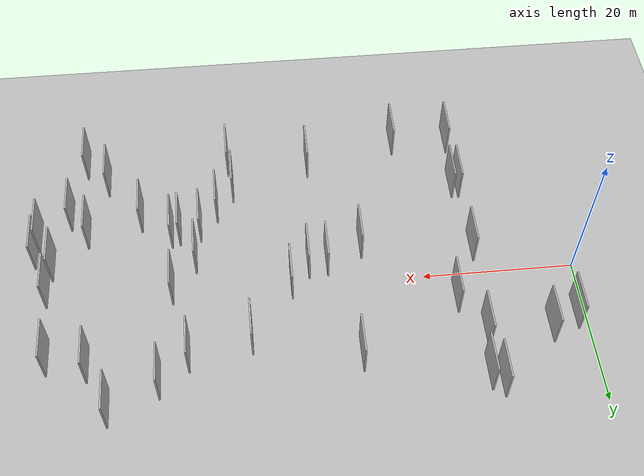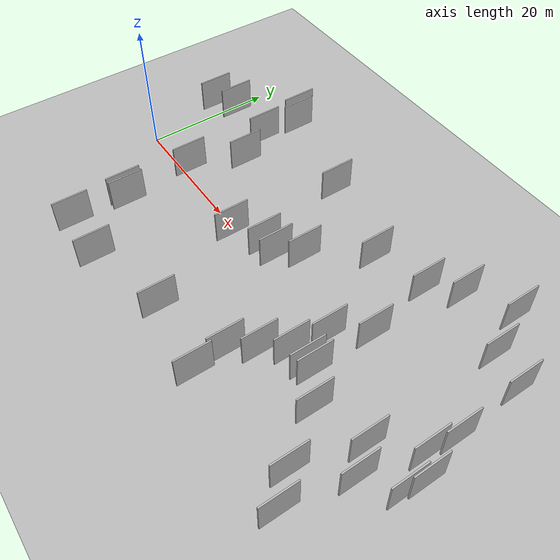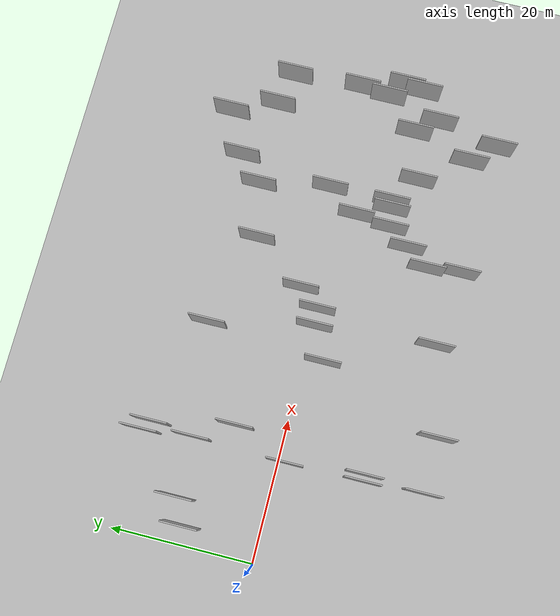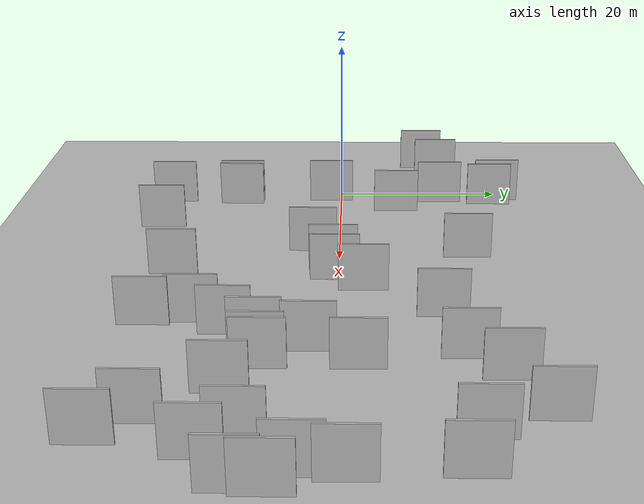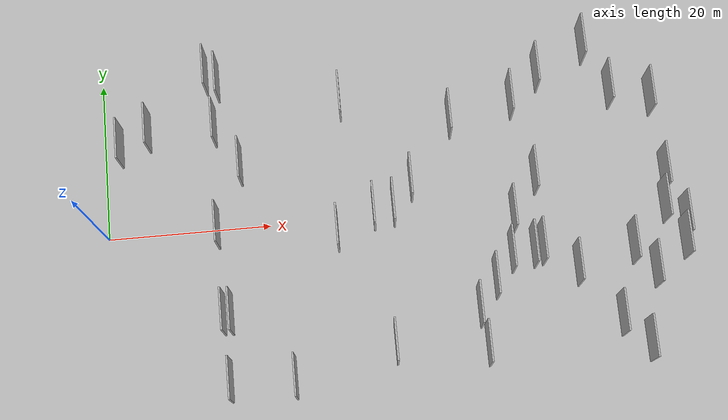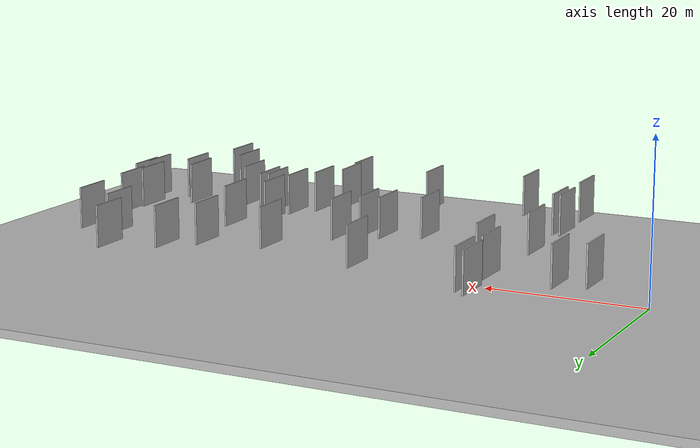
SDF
<?xml version="1.0" encoding="utf-8"?>

<sdf version="1.6">

   <world name="default">

      <gui fullscreen="0">

         <camera name="user_camera">

            <pose>-15 0 4.57585 0 0 0</pose>

            <view_controller>orbit</view_controller>

         </camera>

      </gui>

      <scene>

         <sky>

           <clouds>

             <speed>12</speed>

           </clouds>

         </sky>

         <ambient>0.4 0.4 0.4 1</ambient>

         <background>0.7 0.7 0.7 1</background>

         <shadows>1</shadows>

      </scene>

      <gravity>0 0 -9.8066</gravity>

      <magnetic_field>6e-06 2.3e-05 -4.2e-05</magnetic_field>

      <physics default="0" name="default_physics" type="ode">

         <ode>

            <solver>

               <type>quick</type>

               <iters>10</iters>

               <sor>1.0</sor>

               <use_dynamic_moi_rescaling>0</use_dynamic_moi_rescaling>

            </solver>

            <constraints>

               <cfm>0</cfm>

               <erp>0.2</erp>

               <contact_max_correcting_vel>100</contact_max_correcting_vel>

               <contact_surface_layer>0.001</contact_surface_layer>

            </constraints>

         </ode>

         <max_step_size>0.004</max_step_size>

         <real_time_factor>1</real_time_factor>

         <real_time_update_rate>250</real_time_update_rate>

      </physics>

      <light name="sun" type="directional">

         <cast_shadows>1</cast_shadows>

         <pose>0 0 10 0 0 0</pose>

         <diffuse>0.8 0.8 0.8 1</diffuse>

         <specular>0.2 0.2 0.2 1</specular>

         <attenuation>

            <range>1000</range>

            <constant>0.9</constant>

            <linear>0.01</linear>

            <quadratic>0.001</quadratic>

         </attenuation>

         <direction>-0.5 0.1 -0.9</direction>

      </light>

      <include>

         <name>ground_plane_1</name>

         <uri>model://HANNAS_ground_plane</uri>

         <pose>0 0 0  0 0 0</pose>

      </include>

      <include>

         <name>ground_plane_2</name>

         <uri>model://HANNAS_ground_plane</uri>

         <pose>100 0 0  0 0 0</pose>

      </include>

      <model name="HANNAS_wall_1">

         <static>1</static>

         <pose frame="">15.1511 -11.4985 5.0 0.000000 0.000000 1.570796</pose>

         <link name="link">

            <pose frame="">0 0 2.50 0 0 0</pose>

            <collision name="collision">

               <geometry>

                  <box>

                     <size>5.00 0.2 5.00</size>

                  </box>

               </geometry>

               <max_contacts>10</max_contacts>

               <surface>

                  <contact>

                     <ode/>

                  </contact>

                  <bounce/>

                  <friction>

                     <torsional>

                        <ode/>

                     </torsional>

                     <ode/>

                  </friction>

               </surface>

            </collision>

            <visual name="visual">

               <cast_shadows>0</cast_shadows>

               <geometry>

                  <box>

                     <size>5.00 0.2 5.00</size>

                  </box>

               </geometry>

               <material>

                  <script>

                     <uri>model://HANNAS_wall/materials/scripts</uri>

                     <uri>model://HANNAS_wall/materials/textures</uri>

                     <name>vrc/HANNAS_wall</name>

                  </script>

               </material>

            </visual>

            <self_collide>0</self_collide>

            <enable_wind>0</enable_wind>

            <kinematic>0</kinematic>

         </link>

      </model>

      <model name="HANNAS_wall_2">

         <static>1</static>

         <pose frame="">67.4812 -2.6489 5.0 0.000000 0.000000 1.570796</pose>

         <link name="link">

            <pose frame="">0 0 2.50 0 0 0</pose>

            <collision name="collision">

               <geometry>

                  <box>

                     <size>5.00 0.2 5.00</size>

                  </box>

               </geometry>

               <max_contacts>10</max_contacts>

               <surface>

                  <contact>

                     <ode/>

                  </contact>

                  <bounce/>

                  <friction>

                     <torsional>

                        <ode/>

                     </torsional>

                     <ode/>

                  </friction>

               </surface>

            </collision>

            <visual name="visual">

               <cast_shadows>0</cast_shadows>

               <geometry>

                  <box>

                     <size>5.00 0.2 5.00</size>

                  </box>

               </geometry>

               <material>

                  <script>

                     <uri>model://HANNAS_wall/materials/scripts</uri>

                     <uri>model://HANNAS_wall/materials/textures</uri>

                     <name>vrc/HANNAS_wall</name>

                  </script>

               </material>

            </visual>

            <self_collide>0</self_collide>

            <enable_wind>0</enable_wind>

            <kinematic>0</kinematic>

         </link>

      </model>

      <model name="HANNAS_wall_3">

         <static>1</static>

         <pose frame="">42.9024 10.1819 5.0 0.000000 0.000000 1.570796</pose>

         <link name="link">

            <pose frame="">0 0 2.50 0 0 0</pose>

            <collision name="collision">

               <geometry>

                  <box>

                     <size>5.00 0.2 5.00</size>

                  </box>

               </geometry>

               <max_contacts>10</max_contacts>

               <surface>

                  <contact>

                     <ode/>

                  </contact>

                  <bounce/>

                  <friction>

                     <torsional>

                        <ode/>

                     </torsional>

                     <ode/>

                  </friction>

               </surface>

            </collision>

            <visual name="visual">

               <cast_shadows>0</cast_shadows>

               <geometry>

                  <box>

                     <size>5.00 0.2 5.00</size>

                  </box>

               </geometry>

               <material>

                  <script>

                     <uri>model://HANNAS_wall/materials/scripts</uri>

                     <uri>model://HANNAS_wall/materials/textures</uri>

                     <name>vrc/HANNAS_wall</name>

                  </script>

               </material>

            </visual>

            <self_collide>0</self_collide>

            <enable_wind>0</enable_wind>

            <kinematic>0</kinematic>

         </link>

      </model>

      <model name="HANNAS_wall_4">

         <static>1</static>

         <pose frame="">49.3841 -2.2430 5.0 0.000000 0.000000 1.570796</pose>

         <link name="link">

            <pose frame="">0 0 2.50 0 0 0</pose>

            <collision name="collision">

               <geometry>

                  <box>

                     <size>5.00 0.2 5.00</size>

                  </box>

               </geometry>

               <max_contacts>10</max_contacts>

               <surface>

                  <contact>

                     <ode/>

                  </contact>

                  <bounce/>

                  <friction>

                     <torsional>

                        <ode/>

                     </torsional>

                     <ode/>

                  </friction>

               </surface>

            </collision>

            <visual name="visual">

               <cast_shadows>0</cast_shadows>

               <geometry>

                  <box>

                     <size>5.00 0.2 5.00</size>

                  </box>

               </geometry>

               <material>

                  <script>

                     <uri>model://HANNAS_wall/materials/scripts</uri>

                     <uri>model://HANNAS_wall/materials/textures</uri>

                     <name>vrc/HANNAS_wall</name>

                  </script>

               </material>

            </visual>

            <self_collide>0</self_collide>

            <enable_wind>0</enable_wind>

            <kinematic>0</kinematic>

         </link>

      </model>

      <model name="HANNAS_wall_5">

         <static>1</static>

         <pose frame="">44.2553 -13.3120 5.0 0.000000 0.000000 1.570796</pose>

         <link name="link">

            <pose frame="">0 0 2.50 0 0 0</pose>

            <collision name="collision">

               <geometry>

                  <box>

                     <size>5.00 0.2 5.00</size>

                  </box>

               </geometry>

               <max_contacts>10</max_contacts>

               <surface>

                  <contact>

                     <ode/>

                  </contact>

                  <bounce/>

                  <friction>

                     <torsional>

                        <ode/>

                     </torsional>

                     <ode/>

                  </friction>

               </surface>

            </collision>

            <visual name="visual">

               <cast_shadows>0</cast_shadows>

               <geometry>

                  <box>

                     <size>5.00 0.2 5.00</size>

                  </box>

               </geometry>

               <material>

                  <script>

                     <uri>model://HANNAS_wall/materials/scripts</uri>

                     <uri>model://HANNAS_wall/materials/textures</uri>

                     <name>vrc/HANNAS_wall</name>

                  </script>

               </material>

            </visual>

            <self_collide>0</self_collide>

            <enable_wind>0</enable_wind>

            <kinematic>0</kinematic>

         </link>

      </model>

      <model name="HANNAS_wall_6">

         <static>1</static>

         <pose frame="">46.4679 -10.0862 5.0 0.000000 0.000000 1.570796</pose>

         <link name="link">

            <pose frame="">0 0 2.50 0 0 0</pose>

            <collision name="collision">

               <geometry>

                  <box>

                     <size>5.00 0.2 5.00</size>

                  </box>

               </geometry>

               <max_contacts>10</max_contacts>

               <surface>

                  <contact>

                     <ode/>

                  </contact>

                  <bounce/>

                  <friction>

                     <torsional>

                        <ode/>

                     </torsional>

                     <ode/>

                  </friction>

               </surface>

            </collision>

            <visual name="visual">

               <cast_shadows>0</cast_shadows>

               <geometry>

                  <box>

                     <size>5.00 0.2 5.00</size>

                  </box>

               </geometry>

               <material>

                  <script>

                     <uri>model://HANNAS_wall/materials/scripts</uri>

                     <uri>model://HANNAS_wall/materials/textures</uri>

                     <name>vrc/HANNAS_wall</name>

                  </script>

               </material>

            </visual>

            <self_collide>0</self_collide>

            <enable_wind>0</enable_wind>

            <kinematic>0</kinematic>

         </link>

      </model>

      <model name="HANNAS_wall_7">

         <static>1</static>

         <pose frame="">37.5497 2.6531 5.0 0.000000 0.000000 1.570796</pose>

         <link name="link">

            <pose frame="">0 0 2.50 0 0 0</pose>

            <collision name="collision">

               <geometry>

                  <box>

                     <size>5.00 0.2 5.00</size>

                  </box>

               </geometry>

               <max_contacts>10</max_contacts>

               <surface>

                  <contact>

                     <ode/>

                  </contact>

                  <bounce/>

                  <friction>

                     <torsional>

                        <ode/>

                     </torsional>

                     <ode/>

                  </friction>

               </surface>

            </collision>

            <visual name="visual">

               <cast_shadows>0</cast_shadows>

               <geometry>

                  <box>

                     <size>5.00 0.2 5.00</size>

                  </box>

               </geometry>

               <material>

                  <script>

                     <uri>model://HANNAS_wall/materials/scripts</uri>

                     <uri>model://HANNAS_wall/materials/textures</uri>

                     <name>vrc/HANNAS_wall</name>

                  </script>

               </material>

            </visual>

            <self_collide>0</self_collide>

            <enable_wind>0</enable_wind>

            <kinematic>0</kinematic>

         </link>

      </model>

      <model name="HANNAS_wall_8">

         <static>1</static>

         <pose frame="">51.3502 -6.7506 5.0 0.000000 0.000000 1.570796</pose>

         <link name="link">

            <pose frame="">0 0 2.50 0 0 0</pose>

            <collision name="collision">

               <geometry>

                  <box>

                     <size>5.00 0.2 5.00</size>

                  </box>

               </geometry>

               <max_contacts>10</max_contacts>

               <surface>

                  <contact>

                     <ode/>

                  </contact>

                  <bounce/>

                  <friction>

                     <torsional>

                        <ode/>

                     </torsional>

                     <ode/>

                  </friction>

               </surface>

            </collision>

            <visual name="visual">

               <cast_shadows>0</cast_shadows>

               <geometry>

                  <box>

                     <size>5.00 0.2 5.00</size>

                  </box>

               </geometry>

               <material>

                  <script>

                     <uri>model://HANNAS_wall/materials/scripts</uri>

                     <uri>model://HANNAS_wall/materials/textures</uri>

                     <name>vrc/HANNAS_wall</name>

                  </script>

               </material>

            </visual>

            <self_collide>0</self_collide>

            <enable_wind>0</enable_wind>

            <kinematic>0</kinematic>

         </link>

      </model>

      <model name="HANNAS_wall_9">

         <static>1</static>

         <pose frame="">69.3696 -7.2578 5.0 0.000000 0.000000 1.570796</pose>

         <link name="link">

            <pose frame="">0 0 2.50 0 0 0</pose>

            <collision name="collision">

               <geometry>

                  <box>

                     <size>5.00 0.2 5.00</size>

                  </box>

               </geometry>

               <max_contacts>10</max_contacts>

               <surface>

                  <contact>

                     <ode/>

                  </contact>

                  <bounce/>

                  <friction>

                     <torsional>

                        <ode/>

                     </torsional>

                     <ode/>

                  </friction>

               </surface>

            </collision>

            <visual name="visual">

               <cast_shadows>0</cast_shadows>

               <geometry>

                  <box>

                     <size>5.00 0.2 5.00</size>

                  </box>

               </geometry>

               <material>

                  <script>

                     <uri>model://HANNAS_wall/materials/scripts</uri>

                     <uri>model://HANNAS_wall/materials/textures</uri>

                     <name>vrc/HANNAS_wall</name>

                  </script>

               </material>

            </visual>

            <self_collide>0</self_collide>

            <enable_wind>0</enable_wind>

            <kinematic>0</kinematic>

         </link>

      </model>

      <model name="HANNAS_wall_10">

         <static>1</static>

         <pose frame="">14.4897 11.6780 5.0 0.000000 0.000000 1.570796</pose>

         <link name="link">

            <pose frame="">0 0 2.50 0 0 0</pose>

            <collision name="collision">

               <geometry>

                  <box>

                     <size>5.00 0.2 5.00</size>

                  </box>

               </geometry>

               <max_contacts>10</max_contacts>

               <surface>

                  <contact>

                     <ode/>

                  </contact>

                  <bounce/>

                  <friction>

                     <torsional>

                        <ode/>

                     </torsional>

                     <ode/>

                  </friction>

               </surface>

            </collision>

            <visual name="visual">

               <cast_shadows>0</cast_shadows>

               <geometry>

                  <box>

                     <size>5.00 0.2 5.00</size>

                  </box>

               </geometry>

               <material>

                  <script>

                     <uri>model://HANNAS_wall/materials/scripts</uri>

                     <uri>model://HANNAS_wall/materials/textures</uri>

                     <name>vrc/HANNAS_wall</name>

                  </script>

               </material>

            </visual>

            <self_collide>0</self_collide>

            <enable_wind>0</enable_wind>

            <kinematic>0</kinematic>

         </link>

      </model>

      <model name="HANNAS_wall_11">

         <static>1</static>

         <pose frame="">6.4810 11.6761 5.0 0.000000 0.000000 1.570796</pose>

         <link name="link">

            <pose frame="">0 0 2.50 0 0 0</pose>

            <collision name="collision">

               <geometry>

                  <box>

                     <size>5.00 0.2 5.00</size>

                  </box>

               </geometry>

               <max_contacts>10</max_contacts>

               <surface>

                  <contact>

                     <ode/>

                  </contact>

                  <bounce/>

                  <friction>

                     <torsional>

                        <ode/>

                     </torsional>

                     <ode/>

                  </friction>

               </surface>

            </collision>

            <visual name="visual">

               <cast_shadows>0</cast_shadows>

               <geometry>

                  <box>

                     <size>5.00 0.2 5.00</size>

                  </box>

               </geometry>

               <material>

                  <script>

                     <uri>model://HANNAS_wall/materials/scripts</uri>

                     <uri>model://HANNAS_wall/materials/textures</uri>

                     <name>vrc/HANNAS_wall</name>

                  </script>

               </material>

            </visual>

            <self_collide>0</self_collide>

            <enable_wind>0</enable_wind>

            <kinematic>0</kinematic>

         </link>

      </model>

      <model name="HANNAS_wall_12">

         <static>1</static>

         <pose frame="">60.7297 -15.7429 5.0 0.000000 0.000000 1.570796</pose>

         <link name="link">

            <pose frame="">0 0 2.50 0 0 0</pose>

            <collision name="collision">

               <geometry>

                  <box>

                     <size>5.00 0.2 5.00</size>

                  </box>

               </geometry>

               <max_contacts>10</max_contacts>

               <surface>

                  <contact>

                     <ode/>

                  </contact>

                  <bounce/>

                  <friction>

                     <torsional>

                        <ode/>

                     </torsional>

                     <ode/>

                  </friction>

               </surface>

            </collision>

            <visual name="visual">

               <cast_shadows>0</cast_shadows>

               <geometry>

                  <box>

                     <size>5.00 0.2 5.00</size>

                  </box>

               </geometry>

               <material>

                  <script>

                     <uri>model://HANNAS_wall/materials/scripts</uri>

                     <uri>model://HANNAS_wall/materials/textures</uri>

                     <name>vrc/HANNAS_wall</name>

                  </script>

               </material>

            </visual>

            <self_collide>0</self_collide>

            <enable_wind>0</enable_wind>

            <kinematic>0</kinematic>

         </link>

      </model>

      <model name="HANNAS_wall_13">

         <static>1</static>

         <pose frame="">14.6492 -19.4066 5.0 0.000000 0.000000 1.570796</pose>

         <link name="link">

            <pose frame="">0 0 2.50 0 0 0</pose>

            <collision name="collision">

               <geometry>

                  <box>

                     <size>5.00 0.2 5.00</size>

                  </box>

               </geometry>

               <max_contacts>10</max_contacts>

               <surface>

                  <contact>

                     <ode/>

                  </contact>

                  <bounce/>

                  <friction>

                     <torsional>

                        <ode/>

                     </torsional>

                     <ode/>

                  </friction>

               </surface>

            </collision>

            <visual name="visual">

               <cast_shadows>0</cast_shadows>

               <geometry>

                  <box>

                     <size>5.00 0.2 5.00</size>

                  </box>

               </geometry>

               <material>

                  <script>

                     <uri>model://HANNAS_wall/materials/scripts</uri>

                     <uri>model://HANNAS_wall/materials/textures</uri>

                     <name>vrc/HANNAS_wall</name>

                  </script>

               </material>

            </visual>

            <self_collide>0</self_collide>

            <enable_wind>0</enable_wind>

            <kinematic>0</kinematic>

         </link>

      </model>

      <model name="HANNAS_wall_14">

         <static>1</static>

         <pose frame="">22.1381 -19.7053 5.0 0.000000 0.000000 1.570796</pose>

         <link name="link">

            <pose frame="">0 0 2.50 0 0 0</pose>

            <collision name="collision">

               <geometry>

                  <box>

                     <size>5.00 0.2 5.00</size>

                  </box>

               </geometry>

               <max_contacts>10</max_contacts>

               <surface>

                  <contact>

                     <ode/>

                  </contact>

                  <bounce/>

                  <friction>

                     <torsional>

                        <ode/>

                     </torsional>

                     <ode/>

                  </friction>

               </surface>

            </collision>

            <visual name="visual">

               <cast_shadows>0</cast_shadows>

               <geometry>

                  <box>

                     <size>5.00 0.2 5.00</size>

                  </box>

               </geometry>

               <material>

                  <script>

                     <uri>model://HANNAS_wall/materials/scripts</uri>

                     <uri>model://HANNAS_wall/materials/textures</uri>

                     <name>vrc/HANNAS_wall</name>

                  </script>

               </material>

            </visual>

            <self_collide>0</self_collide>

            <enable_wind>0</enable_wind>

            <kinematic>0</kinematic>

         </link>

      </model>

      <model name="HANNAS_wall_15">

         <static>1</static>

         <pose frame="">54.0547 15.1970 5.0 0.000000 0.000000 1.570796</pose>

         <link name="link">

            <pose frame="">0 0 2.50 0 0 0</pose>

            <collision name="collision">

               <geometry>

                  <box>

                     <size>5.00 0.2 5.00</size>

                  </box>

               </geometry>

               <max_contacts>10</max_contacts>

               <surface>

                  <contact>

                     <ode/>

                  </contact>

                  <bounce/>

                  <friction>

                     <torsional>

                        <ode/>

                     </torsional>

                     <ode/>

                  </friction>

               </surface>

            </collision>

            <visual name="visual">

               <cast_shadows>0</cast_shadows>

               <geometry>

                  <box>

                     <size>5.00 0.2 5.00</size>

                  </box>

               </geometry>

               <material>

                  <script>

                     <uri>model://HANNAS_wall/materials/scripts</uri>

                     <uri>model://HANNAS_wall/materials/textures</uri>

                     <name>vrc/HANNAS_wall</name>

                  </script>

               </material>

            </visual>

            <self_collide>0</self_collide>

            <enable_wind>0</enable_wind>

            <kinematic>0</kinematic>

         </link>

      </model>

      <model name="HANNAS_wall_16">

         <static>1</static>

         <pose frame="">56.2926 -9.3740 5.0 0.000000 0.000000 1.570796</pose>

         <link name="link">

            <pose frame="">0 0 2.50 0 0 0</pose>

            <collision name="collision">

               <geometry>

                  <box>

                     <size>5.00 0.2 5.00</size>

                  </box>

               </geometry>

               <max_contacts>10</max_contacts>

               <surface>

                  <contact>

                     <ode/>

                  </contact>

                  <bounce/>

                  <friction>

                     <torsional>

                        <ode/>

                     </torsional>

                     <ode/>

                  </friction>

               </surface>

            </collision>

            <visual name="visual">

               <cast_shadows>0</cast_shadows>

               <geometry>

                  <box>

                     <size>5.00 0.2 5.00</size>

                  </box>

               </geometry>

               <material>

                  <script>

                     <uri>model://HANNAS_wall/materials/scripts</uri>

                     <uri>model://HANNAS_wall/materials/textures</uri>

                     <name>vrc/HANNAS_wall</name>

                  </script>

               </material>

            </visual>

            <self_collide>0</self_collide>

            <enable_wind>0</enable_wind>

            <kinematic>0</kinematic>

         </link>

      </model>

      <model name="HANNAS_wall_17">

         <static>1</static>

         <pose frame="">44.7669 -17.8929 5.0 0.000000 0.000000 1.570796</pose>

         <link name="link">

            <pose frame="">0 0 2.50 0 0 0</pose>

            <collision name="collision">

               <geometry>

                  <box>

                     <size>5.00 0.2 5.00</size>

                  </box>

               </geometry>

               <max_contacts>10</max_contacts>

               <surface>

                  <contact>

                     <ode/>

                  </contact>

                  <bounce/>

                  <friction>

                     <torsional>

                        <ode/>

                     </torsional>

                     <ode/>

                  </friction>

               </surface>

            </collision>

            <visual name="visual">

               <cast_shadows>0</cast_shadows>

               <geometry>

                  <box>

                     <size>5.00 0.2 5.00</size>

                  </box>

               </geometry>

               <material>

                  <script>

                     <uri>model://HANNAS_wall/materials/scripts</uri>

                     <uri>model://HANNAS_wall/materials/textures</uri>

                     <name>vrc/HANNAS_wall</name>

                  </script>

               </material>

            </visual>

            <self_collide>0</self_collide>

            <enable_wind>0</enable_wind>

            <kinematic>0</kinematic>

         </link>

      </model>

      <model name="HANNAS_wall_18">

         <static>1</static>

         <pose frame="">52.3889 -6.4976 5.0 0.000000 0.000000 1.570796</pose>

         <link name="link">

            <pose frame="">0 0 2.50 0 0 0</pose>

            <collision name="collision">

               <geometry>

                  <box>

                     <size>5.00 0.2 5.00</size>

                  </box>

               </geometry>

               <max_contacts>10</max_contacts>

               <surface>

                  <contact>

                     <ode/>

                  </contact>

                  <bounce/>

                  <friction>

                     <torsional>

                        <ode/>

                     </torsional>

                     <ode/>

                  </friction>

               </surface>

            </collision>

            <visual name="visual">

               <cast_shadows>0</cast_shadows>

               <geometry>

                  <box>

                     <size>5.00 0.2 5.00</size>

                  </box>

               </geometry>

               <material>

                  <script>

                     <uri>model://HANNAS_wall/materials/scripts</uri>

                     <uri>model://HANNAS_wall/materials/textures</uri>

                     <name>vrc/HANNAS_wall</name>

                  </script>

               </material>

            </visual>

            <self_collide>0</self_collide>

            <enable_wind>0</enable_wind>

            <kinematic>0</kinematic>

         </link>

      </model>

      <model name="HANNAS_wall_19">

         <static>1</static>

         <pose frame="">48.6835 -7.1204 5.0 0.000000 0.000000 1.570796</pose>

         <link name="link">

            <pose frame="">0 0 2.50 0 0 0</pose>

            <collision name="collision">

               <geometry>

                  <box>

                     <size>5.00 0.2 5.00</size>

                  </box>

               </geometry>

               <max_contacts>10</max_contacts>

               <surface>

                  <contact>

                     <ode/>

                  </contact>

                  <bounce/>

                  <friction>

                     <torsional>

                        <ode/>

                     </torsional>

                     <ode/>

                  </friction>

               </surface>

            </collision>

            <visual name="visual">

               <cast_shadows>0</cast_shadows>

               <geometry>

                  <box>

                     <size>5.00 0.2 5.00</size>

                  </box>

               </geometry>

               <material>

                  <script>

                     <uri>model://HANNAS_wall/materials/scripts</uri>

                     <uri>model://HANNAS_wall/materials/textures</uri>

                     <name>vrc/HANNAS_wall</name>

                  </script>

               </material>

            </visual>

            <self_collide>0</self_collide>

            <enable_wind>0</enable_wind>

            <kinematic>0</kinematic>

         </link>

      </model>

      <model name="HANNAS_wall_20">

         <static>1</static>

         <pose frame="">17.3200 6.5060 5.0 0.000000 0.000000 1.570796</pose>

         <link name="link">

            <pose frame="">0 0 2.50 0 0 0</pose>

            <collision name="collision">

               <geometry>

                  <box>

                     <size>5.00 0.2 5.00</size>

                  </box>

               </geometry>

               <max_contacts>10</max_contacts>

               <surface>

                  <contact>

                     <ode/>

                  </contact>

                  <bounce/>

                  <friction>

                     <torsional>

                        <ode/>

                     </torsional>

                     <ode/>

                  </friction>

               </surface>

            </collision>

            <visual name="visual">

               <cast_shadows>0</cast_shadows>

               <geometry>

                  <box>

                     <size>5.00 0.2 5.00</size>

                  </box>

               </geometry>

               <material>

                  <script>

                     <uri>model://HANNAS_wall/materials/scripts</uri>

                     <uri>model://HANNAS_wall/materials/textures</uri>

                     <name>vrc/HANNAS_wall</name>

                  </script>

               </material>

            </visual>

            <self_collide>0</self_collide>

            <enable_wind>0</enable_wind>

            <kinematic>0</kinematic>

         </link>

      </model>

      <model name="HANNAS_wall_21">

         <static>1</static>

         <pose frame="">3.0783 10.0685 5.0 0.000000 0.000000 1.570796</pose>

         <link name="link">

            <pose frame="">0 0 2.50 0 0 0</pose>

            <collision name="collision">

               <geometry>

                  <box>

                     <size>5.00 0.2 5.00</size>

                  </box>

               </geometry>

               <max_contacts>10</max_contacts>

               <surface>

                  <contact>

                     <ode/>

                  </contact>

                  <bounce/>

                  <friction>

                     <torsional>

                        <ode/>

                     </torsional>

                     <ode/>

                  </friction>

               </surface>

            </collision>

            <visual name="visual">

               <cast_shadows>0</cast_shadows>

               <geometry>

                  <box>

                     <size>5.00 0.2 5.00</size>

                  </box>

               </geometry>

               <material>

                  <script>

                     <uri>model://HANNAS_wall/materials/scripts</uri>

                     <uri>model://HANNAS_wall/materials/textures</uri>

                     <name>vrc/HANNAS_wall</name>

                  </script>

               </material>

            </visual>

            <self_collide>0</self_collide>

            <enable_wind>0</enable_wind>

            <kinematic>0</kinematic>

         </link>

      </model>

      <model name="HANNAS_wall_22">

         <static>1</static>

         <pose frame="">52.3900 2.1823 5.0 0.000000 0.000000 1.570796</pose>

         <link name="link">

            <pose frame="">0 0 2.50 0 0 0</pose>

            <collision name="collision">

               <geometry>

                  <box>

                     <size>5.00 0.2 5.00</size>

                  </box>

               </geometry>

               <max_contacts>10</max_contacts>

               <surface>

                  <contact>

                     <ode/>

                  </contact>

                  <bounce/>

                  <friction>

                     <torsional>

                        <ode/>

                     </torsional>

                     <ode/>

                  </friction>

               </surface>

            </collision>

            <visual name="visual">

               <cast_shadows>0</cast_shadows>

               <geometry>

                  <box>

                     <size>5.00 0.2 5.00</size>

                  </box>

               </geometry>

               <material>

                  <script>

                     <uri>model://HANNAS_wall/materials/scripts</uri>

                     <uri>model://HANNAS_wall/materials/textures</uri>

                     <name>vrc/HANNAS_wall</name>

                  </script>

               </material>

            </visual>

            <self_collide>0</self_collide>

            <enable_wind>0</enable_wind>

            <kinematic>0</kinematic>

         </link>

      </model>

      <model name="HANNAS_wall_23">

         <static>1</static>

         <pose frame="">69.7374 -4.7287 5.0 0.000000 0.000000 1.570796</pose>

         <link name="link">

            <pose frame="">0 0 2.50 0 0 0</pose>

            <collision name="collision">

               <geometry>

                  <box>

                     <size>5.00 0.2 5.00</size>

                  </box>

               </geometry>

               <max_contacts>10</max_contacts>

               <surface>

                  <contact>

                     <ode/>

                  </contact>

                  <bounce/>

                  <friction>

                     <torsional>

                        <ode/>

                     </torsional>

                     <ode/>

                  </friction>

               </surface>

            </collision>

            <visual name="visual">

               <cast_shadows>0</cast_shadows>

               <geometry>

                  <box>

                     <size>5.00 0.2 5.00</size>

                  </box>

               </geometry>

               <material>

                  <script>

                     <uri>model://HANNAS_wall/materials/scripts</uri>

                     <uri>model://HANNAS_wall/materials/textures</uri>

                     <name>vrc/HANNAS_wall</name>

                  </script>

               </material>

            </visual>

            <self_collide>0</self_collide>

            <enable_wind>0</enable_wind>

            <kinematic>0</kinematic>

         </link>

      </model>

      <model name="HANNAS_wall_24">

         <static>1</static>

         <pose frame="">60.0564 18.2540 5.0 0.000000 0.000000 1.570796</pose>

         <link name="link">

            <pose frame="">0 0 2.50 0 0 0</pose>

            <collision name="collision">

               <geometry>

                  <box>

                     <size>5.00 0.2 5.00</size>

                  </box>

               </geometry>

               <max_contacts>10</max_contacts>

               <surface>

                  <contact>

                     <ode/>

                  </contact>

                  <bounce/>

                  <friction>

                     <torsional>

                        <ode/>

                     </torsional>

                     <ode/>

                  </friction>

               </surface>

            </collision>

            <visual name="visual">

               <cast_shadows>0</cast_shadows>

               <geometry>

                  <box>

                     <size>5.00 0.2 5.00</size>

                  </box>

               </geometry>

               <material>

                  <script>

                     <uri>model://HANNAS_wall/materials/scripts</uri>

                     <uri>model://HANNAS_wall/materials/textures</uri>

                     <name>vrc/HANNAS_wall</name>

                  </script>

               </material>

            </visual>

            <self_collide>0</self_collide>

            <enable_wind>0</enable_wind>

            <kinematic>0</kinematic>

         </link>

      </model>

      <model name="HANNAS_wall_25">

         <static>1</static>

         <pose frame="">15.1618 17.4263 5.0 0.000000 0.000000 1.570796</pose>

         <link name="link">

            <pose frame="">0 0 2.50 0 0 0</pose>

            <collision name="collision">

               <geometry>

                  <box>

                     <size>5.00 0.2 5.00</size>

                  </box>

               </geometry>

               <max_contacts>10</max_contacts>

               <surface>

                  <contact>

                     <ode/>

                  </contact>

                  <bounce/>

                  <friction>

                     <torsional>

                        <ode/>

                     </torsional>

                     <ode/>

                  </friction>

               </surface>

            </collision>

            <visual name="visual">

               <cast_shadows>0</cast_shadows>

               <geometry>

                  <box>

                     <size>5.00 0.2 5.00</size>

                  </box>

               </geometry>

               <material>

                  <script>

                     <uri>model://HANNAS_wall/materials/scripts</uri>

                     <uri>model://HANNAS_wall/materials/textures</uri>

                     <name>vrc/HANNAS_wall</name>

                  </script>

               </material>

            </visual>

            <self_collide>0</self_collide>

            <enable_wind>0</enable_wind>

            <kinematic>0</kinematic>

         </link>

      </model>

      <model name="HANNAS_wall_26">

         <static>1</static>

         <pose frame="">35.2112 -0.2264 5.0 0.000000 0.000000 1.570796</pose>

         <link name="link">

            <pose frame="">0 0 2.50 0 0 0</pose>

            <collision name="collision">

               <geometry>

                  <box>

                     <size>5.00 0.2 5.00</size>

                  </box>

               </geometry>

               <max_contacts>10</max_contacts>

               <surface>

                  <contact>

                     <ode/>

                  </contact>

                  <bounce/>

                  <friction>

                     <torsional>

                        <ode/>

                     </torsional>

                     <ode/>

                  </friction>

               </surface>

            </collision>

            <visual name="visual">

               <cast_shadows>0</cast_shadows>

               <geometry>

                  <box>

                     <size>5.00 0.2 5.00</size>

                  </box>

               </geometry>

               <material>

                  <script>

                     <uri>model://HANNAS_wall/materials/scripts</uri>

                     <uri>model://HANNAS_wall/materials/textures</uri>

                     <name>vrc/HANNAS_wall</name>

                  </script>

               </material>

            </visual>

            <self_collide>0</self_collide>

            <enable_wind>0</enable_wind>

            <kinematic>0</kinematic>

         </link>

      </model>

      <model name="HANNAS_wall_27">

         <static>1</static>

         <pose frame="">28.3330 -2.6658 5.0 0.000000 0.000000 1.570796</pose>

         <link name="link">

            <pose frame="">0 0 2.50 0 0 0</pose>

            <collision name="collision">

               <geometry>

                  <box>

                     <size>5.00 0.2 5.00</size>

                  </box>

               </geometry>

               <max_contacts>10</max_contacts>

               <surface>

                  <contact>

                     <ode/>

                  </contact>

                  <bounce/>

                  <friction>

                     <torsional>

                        <ode/>

                     </torsional>

                     <ode/>

                  </friction>

               </surface>

            </collision>

            <visual name="visual">

               <cast_shadows>0</cast_shadows>

               <geometry>

                  <box>

                     <size>5.00 0.2 5.00</size>

                  </box>

               </geometry>

               <material>

                  <script>

                     <uri>model://HANNAS_wall/materials/scripts</uri>

                     <uri>model://HANNAS_wall/materials/textures</uri>

                     <name>vrc/HANNAS_wall</name>

                  </script>

               </material>

            </visual>

            <self_collide>0</self_collide>

            <enable_wind>0</enable_wind>

            <kinematic>0</kinematic>

         </link>

      </model>

      <model name="HANNAS_wall_28">

         <static>1</static>

         <pose frame="">63.1434 -7.3432 5.0 0.000000 0.000000 1.570796</pose>

         <link name="link">

            <pose frame="">0 0 2.50 0 0 0</pose>

            <collision name="collision">

               <geometry>

                  <box>

                     <size>5.00 0.2 5.00</size>

                  </box>

               </geometry>

               <max_contacts>10</max_contacts>

               <surface>

                  <contact>

                     <ode/>

                  </contact>

                  <bounce/>

                  <friction>

                     <torsional>

                        <ode/>

                     </torsional>

                     <ode/>

                  </friction>

               </surface>

            </collision>

            <visual name="visual">

               <cast_shadows>0</cast_shadows>

               <geometry>

                  <box>

                     <size>5.00 0.2 5.00</size>

                  </box>

               </geometry>

               <material>

                  <script>

                     <uri>model://HANNAS_wall/materials/scripts</uri>

                     <uri>model://HANNAS_wall/materials/textures</uri>

                     <name>vrc/HANNAS_wall</name>

                  </script>

               </material>

            </visual>

            <self_collide>0</self_collide>

            <enable_wind>0</enable_wind>

            <kinematic>0</kinematic>

         </link>

      </model>

      <model name="HANNAS_wall_29">

         <static>1</static>

         <pose frame="">50.5570 11.9324 5.0 0.000000 0.000000 1.570796</pose>

         <link name="link">

            <pose frame="">0 0 2.50 0 0 0</pose>

            <collision name="collision">

               <geometry>

                  <box>

                     <size>5.00 0.2 5.00</size>

                  </box>

               </geometry>

               <max_contacts>10</max_contacts>

               <surface>

                  <contact>

                     <ode/>

                  </contact>

                  <bounce/>

                  <friction>

                     <torsional>

                        <ode/>

                     </torsional>

                     <ode/>

                  </friction>

               </surface>

            </collision>

            <visual name="visual">

               <cast_shadows>0</cast_shadows>

               <geometry>

                  <box>

                     <size>5.00 0.2 5.00</size>

                  </box>

               </geometry>

               <material>

                  <script>

                     <uri>model://HANNAS_wall/materials/scripts</uri>

                     <uri>model://HANNAS_wall/materials/textures</uri>

                     <name>vrc/HANNAS_wall</name>

                  </script>

               </material>

            </visual>

            <self_collide>0</self_collide>

            <enable_wind>0</enable_wind>

            <kinematic>0</kinematic>

         </link>

      </model>

      <model name="HANNAS_wall_30">

         <static>1</static>

         <pose frame="">67.9978 1.2751 5.0 0.000000 0.000000 1.570796</pose>

         <link name="link">

            <pose frame="">0 0 2.50 0 0 0</pose>

            <collision name="collision">

               <geometry>

                  <box>

                     <size>5.00 0.2 5.00</size>

                  </box>

               </geometry>

               <max_contacts>10</max_contacts>

               <surface>

                  <contact>

                     <ode/>

                  </contact>

                  <bounce/>

                  <friction>

                     <torsional>

                        <ode/>

                     </torsional>

                     <ode/>

                  </friction>

               </surface>

            </collision>

            <visual name="visual">

               <cast_shadows>0</cast_shadows>

               <geometry>

                  <box>

                     <size>5.00 0.2 5.00</size>

                  </box>

               </geometry>

               <material>

                  <script>

                     <uri>model://HANNAS_wall/materials/scripts</uri>

                     <uri>model://HANNAS_wall/materials/textures</uri>

                     <name>vrc/HANNAS_wall</name>

                  </script>

               </material>

            </visual>

            <self_collide>0</self_collide>

            <enable_wind>0</enable_wind>

            <kinematic>0</kinematic>

         </link>

      </model>

      <model name="HANNAS_wall_31">

         <static>1</static>

         <pose frame="">29.8701 13.6266 5.0 0.000000 0.000000 1.570796</pose>

         <link name="link">

            <pose frame="">0 0 2.50 0 0 0</pose>

            <collision name="collision">

               <geometry>

                  <box>

                     <size>5.00 0.2 5.00</size>

                  </box>

               </geometry>

               <max_contacts>10</max_contacts>

               <surface>

                  <contact>

                     <ode/>

                  </contact>

                  <bounce/>

                  <friction>

                     <torsional>

                        <ode/>

                     </torsional>

                     <ode/>

                  </friction>

               </surface>

            </collision>

            <visual name="visual">

               <cast_shadows>0</cast_shadows>

               <geometry>

                  <box>

                     <size>5.00 0.2 5.00</size>

                  </box>

               </geometry>

               <material>

                  <script>

                     <uri>model://HANNAS_wall/materials/scripts</uri>

                     <uri>model://HANNAS_wall/materials/textures</uri>

                     <name>vrc/HANNAS_wall</name>

                  </script>

               </material>

            </visual>

            <self_collide>0</self_collide>

            <enable_wind>0</enable_wind>

            <kinematic>0</kinematic>

         </link>

      </model>

      <model name="HANNAS_wall_32">

         <static>1</static>

         <pose frame="">14.1389 -1.0298 5.0 0.000000 0.000000 1.570796</pose>

         <link name="link">

            <pose frame="">0 0 2.50 0 0 0</pose>

            <collision name="collision">

               <geometry>

                  <box>

                     <size>5.00 0.2 5.00</size>

                  </box>

               </geometry>

               <max_contacts>10</max_contacts>

               <surface>

                  <contact>

                     <ode/>

                  </contact>

                  <bounce/>

                  <friction>

                     <torsional>

                        <ode/>

                     </torsional>

                     <ode/>

                  </friction>

               </surface>

            </collision>

            <visual name="visual">

               <cast_shadows>0</cast_shadows>

               <geometry>

                  <box>

                     <size>5.00 0.2 5.00</size>

                  </box>

               </geometry>

               <material>

                  <script>

                     <uri>model://HANNAS_wall/materials/scripts</uri>

                     <uri>model://HANNAS_wall/materials/textures</uri>

                     <name>vrc/HANNAS_wall</name>

                  </script>

               </material>

            </visual>

            <self_collide>0</self_collide>

            <enable_wind>0</enable_wind>

            <kinematic>0</kinematic>

         </link>

      </model>

      <model name="HANNAS_wall_33">

         <static>1</static>

         <pose frame="">14.2528 -11.4565 5.0 0.000000 0.000000 1.570796</pose>

         <link name="link">

            <pose frame="">0 0 2.50 0 0 0</pose>

            <collision name="collision">

               <geometry>

                  <box>

                     <size>5.00 0.2 5.00</size>

                  </box>

               </geometry>

               <max_contacts>10</max_contacts>

               <surface>

                  <contact>

                     <ode/>

                  </contact>

                  <bounce/>

                  <friction>

                     <torsional>

                        <ode/>

                     </torsional>

                     <ode/>

                  </friction>

               </surface>

            </collision>

            <visual name="visual">

               <cast_shadows>0</cast_shadows>

               <geometry>

                  <box>

                     <size>5.00 0.2 5.00</size>

                  </box>

               </geometry>

               <material>

                  <script>

                     <uri>model://HANNAS_wall/materials/scripts</uri>

                     <uri>model://HANNAS_wall/materials/textures</uri>

                     <name>vrc/HANNAS_wall</name>

                  </script>

               </material>

            </visual>

            <self_collide>0</self_collide>

            <enable_wind>0</enable_wind>

            <kinematic>0</kinematic>

         </link>

      </model>

      <model name="HANNAS_wall_34">

         <static>1</static>

         <pose frame="">32.8319 -0.4219 5.0 0.000000 0.000000 1.570796</pose>

         <link name="link">

            <pose frame="">0 0 2.50 0 0 0</pose>

            <collision name="collision">

               <geometry>

                  <box>

                     <size>5.00 0.2 5.00</size>

                  </box>

               </geometry>

               <max_contacts>10</max_contacts>

               <surface>

                  <contact>

                     <ode/>

                  </contact>

                  <bounce/>

                  <friction>

                     <torsional>

                        <ode/>

                     </torsional>

                     <ode/>

                  </friction>

               </surface>

            </collision>

            <visual name="visual">

               <cast_shadows>0</cast_shadows>

               <geometry>

                  <box>

                     <size>5.00 0.2 5.00</size>

                  </box>

               </geometry>

               <material>

                  <script>

                     <uri>model://HANNAS_wall/materials/scripts</uri>

                     <uri>model://HANNAS_wall/materials/textures</uri>

                     <name>vrc/HANNAS_wall</name>

                  </script>

               </material>

            </visual>

            <self_collide>0</self_collide>

            <enable_wind>0</enable_wind>

            <kinematic>0</kinematic>

         </link>

      </model>

      <model name="HANNAS_wall_35">

         <static>1</static>

         <pose frame="">67.4828 10.8866 5.0 0.000000 0.000000 1.570796</pose>

         <link name="link">

            <pose frame="">0 0 2.50 0 0 0</pose>

            <collision name="collision">

               <geometry>

                  <box>

                     <size>5.00 0.2 5.00</size>

                  </box>

               </geometry>

               <max_contacts>10</max_contacts>

               <surface>

                  <contact>

                     <ode/>

                  </contact>

                  <bounce/>

                  <friction>

                     <torsional>

                        <ode/>

                     </torsional>

                     <ode/>

                  </friction>

               </surface>

            </collision>

            <visual name="visual">

               <cast_shadows>0</cast_shadows>

               <geometry>

                  <box>

                     <size>5.00 0.2 5.00</size>

                  </box>

               </geometry>

               <material>

                  <script>

                     <uri>model://HANNAS_wall/materials/scripts</uri>

                     <uri>model://HANNAS_wall/materials/textures</uri>

                     <name>vrc/HANNAS_wall</name>

                  </script>

               </material>

            </visual>

            <self_collide>0</self_collide>

            <enable_wind>0</enable_wind>

            <kinematic>0</kinematic>

         </link>

      </model>

      <model name="HANNAS_wall_36">

         <static>1</static>

         <pose frame="">63.6300 -19.0113 5.0 0.000000 0.000000 1.570796</pose>

         <link name="link">

            <pose frame="">0 0 2.50 0 0 0</pose>

            <collision name="collision">

               <geometry>

                  <box>

                     <size>5.00 0.2 5.00</size>

                  </box>

               </geometry>

               <max_contacts>10</max_contacts>

               <surface>

                  <contact>

                     <ode/>

                  </contact>

                  <bounce/>

                  <friction>

                     <torsional>

                        <ode/>

                     </torsional>

                     <ode/>

                  </friction>

               </surface>

            </collision>

            <visual name="visual">

               <cast_shadows>0</cast_shadows>

               <geometry>

                  <box>

                     <size>5.00 0.2 5.00</size>

                  </box>

               </geometry>

               <material>

                  <script>

                     <uri>model://HANNAS_wall/materials/scripts</uri>

                     <uri>model://HANNAS_wall/materials/textures</uri>

                     <name>vrc/HANNAS_wall</name>

                  </script>

               </material>

            </visual>

            <self_collide>0</self_collide>

            <enable_wind>0</enable_wind>

            <kinematic>0</kinematic>

         </link>

      </model>

      <model name="HANNAS_wall_37">

         <static>1</static>

         <pose frame="">65.4218 -10.3837 5.0 0.000000 0.000000 1.570796</pose>

         <link name="link">

            <pose frame="">0 0 2.50 0 0 0</pose>

            <collision name="collision">

               <geometry>

                  <box>

                     <size>5.00 0.2 5.00</size>

                  </box>

               </geometry>

               <max_contacts>10</max_contacts>

               <surface>

                  <contact>

                     <ode/>

                  </contact>

                  <bounce/>

                  <friction>

                     <torsional>

                        <ode/>

                     </torsional>

                     <ode/>

                  </friction>

               </surface>

            </collision>

            <visual name="visual">

               <cast_shadows>0</cast_shadows>

               <geometry>

                  <box>

                     <size>5.00 0.2 5.00</size>

                  </box>

               </geometry>

               <material>

                  <script>

                     <uri>model://HANNAS_wall/materials/scripts</uri>

                     <uri>model://HANNAS_wall/materials/textures</uri>

                     <name>vrc/HANNAS_wall</name>

                  </script>

               </material>

            </visual>

            <self_collide>0</self_collide>

            <enable_wind>0</enable_wind>

            <kinematic>0</kinematic>

         </link>

      </model>

      <model name="HANNAS_wall_38">

         <static>1</static>

         <pose frame="">13.8048 18.4526 5.0 0.000000 0.000000 1.570796</pose>

         <link name="link">

            <pose frame="">0 0 2.50 0 0 0</pose>

            <collision name="collision">

               <geometry>

                  <box>

                     <size>5.00 0.2 5.00</size>

                  </box>

               </geometry>

               <max_contacts>10</max_contacts>

               <surface>

                  <contact>

                     <ode/>

                  </contact>

                  <bounce/>

                  <friction>

                     <torsional>

                        <ode/>

                     </torsional>

                     <ode/>

                  </friction>

               </surface>

            </collision>

            <visual name="visual">

               <cast_shadows>0</cast_shadows>

               <geometry>

                  <box>

                     <size>5.00 0.2 5.00</size>

                  </box>

               </geometry>

               <material>

                  <script>

                     <uri>model://HANNAS_wall/materials/scripts</uri>

                     <uri>model://HANNAS_wall/materials/textures</uri>

                     <name>vrc/HANNAS_wall</name>

                  </script>

               </material>

            </visual>

            <self_collide>0</self_collide>

            <enable_wind>0</enable_wind>

            <kinematic>0</kinematic>

         </link>

      </model>

      <model name="HANNAS_wall_39">

         <static>1</static>

         <pose frame="">34.0725 -16.7431 5.0 0.000000 0.000000 1.570796</pose>

         <link name="link">

            <pose frame="">0 0 2.50 0 0 0</pose>

            <collision name="collision">

               <geometry>

                  <box>

                     <size>5.00 0.2 5.00</size>

                  </box>

               </geometry>

               <max_contacts>10</max_contacts>

               <surface>

                  <contact>

                     <ode/>

                  </contact>

                  <bounce/>

                  <friction>

                     <torsional>

                        <ode/>

                     </torsional>

                     <ode/>

                  </friction>

               </surface>

            </collision>

            <visual name="visual">

               <cast_shadows>0</cast_shadows>

               <geometry>

                  <box>

                     <size>5.00 0.2 5.00</size>

                  </box>

               </geometry>

               <material>

                  <script>

                     <uri>model://HANNAS_wall/materials/scripts</uri>

                     <uri>model://HANNAS_wall/materials/textures</uri>

                     <name>vrc/HANNAS_wall</name>

                  </script>

               </material>

            </visual>

            <self_collide>0</self_collide>

            <enable_wind>0</enable_wind>

            <kinematic>0</kinematic>

         </link>

      </model>

      <model name="HANNAS_wall_40">

         <static>1</static>

         <pose frame="">62.6297 12.2385 5.0 0.000000 0.000000 1.570796</pose>

         <link name="link">

            <pose frame="">0 0 2.50 0 0 0</pose>

            <collision name="collision">

               <geometry>

                  <box>

                     <size>5.00 0.2 5.00</size>

                  </box>

               </geometry>

               <max_contacts>10</max_contacts>

               <surface>

                  <contact>

                     <ode/>

                  </contact>

                  <bounce/>

                  <friction>

                     <torsional>

                        <ode/>

                     </torsional>

                     <ode/>

                  </friction>

               </surface>

            </collision>

            <visual name="visual">

               <cast_shadows>0</cast_shadows>

               <geometry>

                  <box>

                     <size>5.00 0.2 5.00</size>

                  </box>

               </geometry>

               <material>

                  <script>

                     <uri>model://HANNAS_wall/materials/scripts</uri>

                     <uri>model://HANNAS_wall/materials/textures</uri>

                     <name>vrc/HANNAS_wall</name>

                  </script>

               </material>

            </visual>

            <self_collide>0</self_collide>

            <enable_wind>0</enable_wind>

            <kinematic>0</kinematic>

         </link>

      </model>

   </world>

</sdf>
